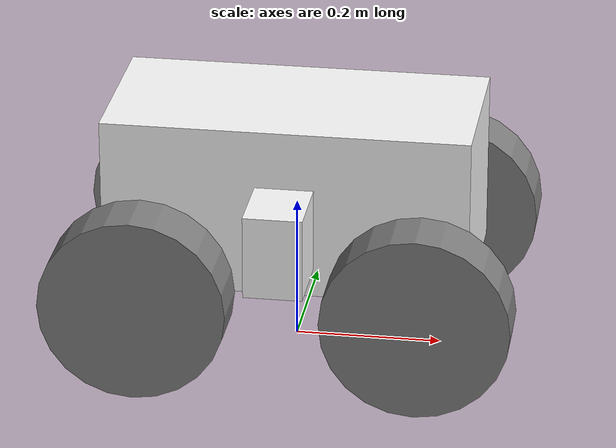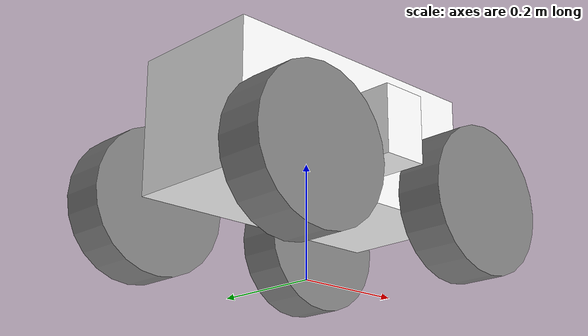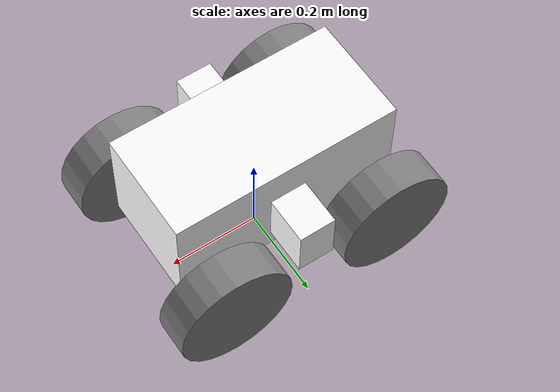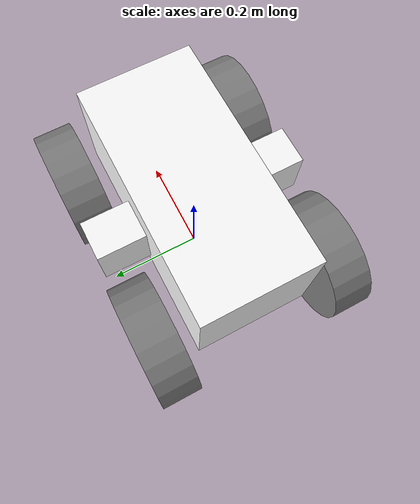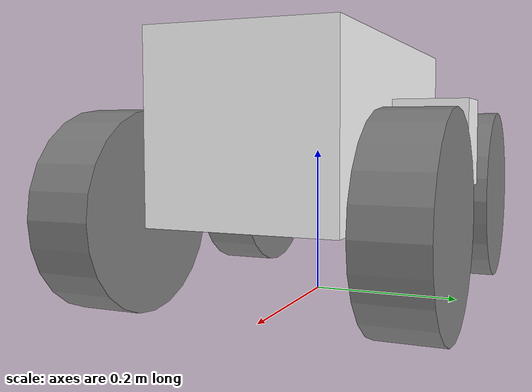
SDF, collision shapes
<?xml version="1.0"?>
<sdf version="1.6">
  <model name="robotika_freyja_sensor_config_2">
    <pose>0 0 0.1275 0 0 0</pose>
    <enable_wind>1</enable_wind>
    <link name="base_link">
      <inertial>
        <pose>0 0 0.0725 0 0 0</pose>
        <mass>9.6</mass>
        <inertia>
          <ixx>0.0512</ixx>
          <iyy>0.07712</iyy>
          <izz>0.11808</izz>
        </inertia>
      </inertial>

      <!-- This bounding box covers also wheel mounts at the bottom and
           lidars on the top. -->
      <collision name="chassis_collision">
        <pose>0 0 0.105 0 0 0</pose>
        <geometry>
          <box>
            <size>0.50 0.24 0.235</size>
          </box>
        </geometry>
      </collision>

      <visual name="visual">
        <pose>0 0 .1 0 0 1.5707</pose>
        <geometry>
          <mesh>
            <uri>model://T90_1/meshes/T90_1.dae</uri>
          </mesh>
        </geometry>
        <material>
          <script>
            <uri>model://T90_1/materials/scripts</uri>
            <uri>model://T90_1/materials/textures</uri>
            <name>ArucoVisualMarker0/Marker</name>
          </script>
          <ambient>1 1 1 1</ambient>
          <diffuse>1 1 1 1</diffuse>
          <specular>0 0 0 1</specular>
          <emissive>1 1 1 0</emissive>
          <shader type='vertex'>
            <normal_map>__default__</normal_map>
          </shader>
        </material>
      </visual>
      <collision name="left_mount_collision">
        <pose>0.0 0.17 0.085 0 0 0</pose>
        <geometry>
          <box>
            <size>0.08 0.1 0.115</size>
          </box>
        </geometry>
      </collision>
      <collision name="right_mount_collision">
        <pose>0.0 -0.17 0.085 0 0 0</pose>
        <geometry>
          <box>
            <size>0.08 0.1 0.115</size>
          </box>
        </geometry>
      </collision>
    </link>

    <link name="front_left_wheel">
      <pose>0.19 0.19 0 0 0 0</pose>
      <inertial>
        <mass>5.0</mass>
        <inertia>
          <ixx>0.0153</ixx>
          <iyy>0.025</iyy>
          <izz>0.0153</izz>
        </inertia>
      </inertial>
      <collision name="front_left_wheel_collision">
        <pose>0 0 0 -1.5707963267948966 0 0</pose>
        <geometry>
          <cylinder>
            <length>0.082</length>
            <radius>0.1275</radius>
          </cylinder>
        </geometry>
        <surface>
          <friction>
            <ode>
              <mu>0.5</mu>
              <mu2>1</mu2>
              <slip1>0.0016</slip1>
              <slip2>0</slip2>
              <fdir1>0 0 1</fdir1>
            </ode>
          </friction>
        </surface>
      </collision>
      <visual name="front_left_wheel_tire_visual">
        <pose>0 0 0 1.5708 0 0</pose>
        <geometry>
          <mesh>
            <uri>meshes/wheel_left.dae</uri>
            <scale>1.3010204 1.3010204 2.05</scale>
          </mesh>
        </geometry>
      </visual>
      <visual name="front_left_wheel_hub_visual">
        <pose>0 -0.055 0 1.5707963267948966 0 0</pose>
        <geometry>
          <cylinder>
            <length>0.025</length>
            <radius>0.04</radius>
          </cylinder>
        </geometry>
        <material>
          <ambient>0.502 0.502 0.502 1.0</ambient>
          <diffuse>0.502 0.502 0.502 1.0</diffuse>
        </material>
      </visual>
    </link>

    <link name="front_right_wheel">
      <pose>0.19 -0.19 0 0 0 0</pose>
      <inertial>
        <mass>5.0</mass>
        <inertia>
          <ixx>0.0153</ixx>
          <iyy>0.025</iyy>
          <izz>0.0153</izz>
        </inertia>
      </inertial>
      <collision name="front_right_wheel_collision">
        <pose>0 0 0 1.5707963267948966 0 0</pose>
        <geometry>
          <cylinder>
            <length>0.082</length>
            <radius>0.1275</radius>
          </cylinder>
        </geometry>
        <surface>
          <friction>
            <ode>
              <mu>0.5</mu>
              <mu2>1</mu2>
              <slip1>0.0016</slip1>
              <slip2>0</slip2>
              <fdir1>0 0 1</fdir1>
            </ode>
          </friction>
        </surface>
      </collision>
      <visual name="front_right_wheel_tire_visual">
        <pose>0 0 0 1.5708 0 0</pose>
        <geometry>
          <mesh>
            <uri>meshes/wheel_right.dae</uri>
            <scale>1.3010204 1.3010204 2.05</scale>
          </mesh>
        </geometry>
      </visual>
      <visual name="front_right_wheel_hub_visual">
        <pose>0 0.055 0 1.5707963267948966 0 0</pose>
        <geometry>
          <cylinder>
            <length>0.025</length>
            <radius>0.04</radius>
          </cylinder>
        </geometry>
        <material>
          <ambient>0.502 0.502 0.502 1.0</ambient>
          <diffuse>0.502 0.502 0.502 1.0</diffuse>
        </material>
      </visual>
    </link>

    <link name="rear_left_wheel">
      <pose>-0.19 0.19 0 0 0 0</pose>
      <inertial>
        <mass>5.0</mass>
        <inertia>
          <ixx>0.0153</ixx>
          <iyy>0.025</iyy>
          <izz>0.0153</izz>
        </inertia>
      </inertial>
      <collision name="rear_left_wheel_collision">
        <pose>0 0 0 -1.5707963267948966 0 0</pose>
        <geometry>
          <cylinder>
            <length>0.082</length>
            <radius>0.1275</radius>
          </cylinder>
        </geometry>
        <surface>
          <friction>
            <ode>
              <mu>0.5</mu>
              <mu2>1</mu2>
              <slip1>0.0016</slip1>
              <slip2>0</slip2>
              <fdir1>0 0 1</fdir1>
            </ode>
          </friction>
        </surface>
      </collision>
      <visual name="rear_left_wheel_tire_visual">
        <pose>0 0 0 1.5708 0 0</pose>
        <geometry>
          <mesh>
            <uri>meshes/wheel_left.dae</uri>
            <scale>1.3010204 1.3010204 2.05</scale>
          </mesh>
        </geometry>
      </visual>
      <visual name="rear_left_wheel_hub_visual">
        <pose>0 -0.055 0 1.5707963267948966 0 0</pose>
        <geometry>
          <cylinder>
            <length>0.025</length>
            <radius>0.04</radius>
          </cylinder>
        </geometry>
        <material>
          <ambient>0.502 0.502 0.502 1.0</ambient>
          <diffuse>0.502 0.502 0.502 1.0</diffuse>
        </material>
      </visual>
    </link>

    <link name="rear_right_wheel">
      <pose>-0.19 -0.19 0 0 0 0</pose>
      <inertial>
        <mass>5.0</mass>
        <inertia>
          <ixx>0.0153</ixx>
          <iyy>0.025</iyy>
          <izz>0.0153</izz>
        </inertia>
      </inertial>
      <collision name="rear_right_wheel_collision">
        <pose>0 0 0 1.5707963267948966 0 0</pose>
        <geometry>
          <cylinder>
            <length>0.082</length>
            <radius>0.1275</radius>
          </cylinder>
        </geometry>
        <surface>
          <friction>
            <ode>
              <mu>0.5</mu>
              <mu2>1</mu2>
              <slip1>0.0016</slip1>
              <slip2>0</slip2>
              <fdir1>0 0 1</fdir1>
            </ode>
          </friction>
        </surface>
      </collision>
      <visual name="rear_right_wheel_tire_visual">
        <pose>0 0 0 1.5708 0 0</pose>
        <geometry>
          <mesh>
            <uri>meshes/wheel_right.dae</uri>
            <scale>1.3010204 1.3010204 2.05</scale>
          </mesh>
        </geometry>
      </visual>
      <visual name="rear_right_wheel_hub_visual">
        <pose>0 0.055 0 1.5707963267948966 0 0</pose>
        <geometry>
          <cylinder>
            <length>0.025</length>
            <radius>0.04</radius>
          </cylinder>
        </geometry>
        <material>
          <ambient>0.502 0.502 0.502 1.0</ambient>
          <diffuse>0.502 0.502 0.502 1.0</diffuse>
        </material>
      </visual>
    </link>

    <joint name="front_left_wheel_joint" type="revolute">
      <child>front_left_wheel</child>
      <parent>base_link</parent>
      <axis>
        <xyz>0 1 0</xyz>
        <limit>
          <lower>-1.79769e+308</lower>
          <upper>+1.79769e+308</upper>
          <!-- 2.5 m/s => angular velocity of the wheel in rad/s -->
          <velocity>19.61</velocity>
          <!-- Torque in NM. -->
          <effort>10</effort>
        </limit>
        <use_parent_model_frame>1</use_parent_model_frame>
      </axis>
    </joint>

    <joint name="rear_left_wheel_joint" type="revolute">
      <parent>base_link</parent>
      <child>rear_left_wheel</child>
      <axis>
        <xyz>0 1 0</xyz>
        <limit>
          <lower>-1.79769e+308</lower>
          <upper>+1.79769e+308</upper>
          <!-- 2.5 m/s => angular velocity of the wheel in rad/s -->
          <velocity>19.61</velocity>
          <!-- Torque in NM. -->
          <effort>10</effort>
        </limit>
      </axis>
    </joint>

    <joint name="rear_right_wheel_joint" type="revolute">
      <parent>base_link</parent>
      <child>rear_right_wheel</child>
      <axis>
        <xyz>0 1 0</xyz>
        <limit>
          <lower>-1.79769e+308</lower>
          <upper>+1.79769e+308</upper>
          <!-- 2.5 m/s => angular velocity of the wheel in rad/s -->
          <velocity>19.61</velocity>
          <!-- Torque in NM. -->
          <effort>10</effort>
        </limit>
      </axis>
    </joint>

    <joint name="front_right_wheel_joint" type="revolute">
      <parent>base_link</parent>
      <child>front_right_wheel</child>
      <axis>
        <xyz>0 1 0</xyz>
        <limit>
          <lower>-1.79769e+308</lower>
          <upper>+1.79769e+308</upper>
          <!-- 2.5 m/s => angular velocity of the wheel in rad/s -->
          <velocity>19.61</velocity>
          <!-- Torque in NM. -->
          <effort>10</effort>
        </limit>
      </axis>
    </joint>

    <plugin name="differential_drive_controller" filename="libgazebo_ros_diff_drive.so">
        <!-- Plugin update rate in Hz -->
        <updateRate>20</updateRate>
        <!-- Name of left joint, defaults to `left_joint` -->
        <leftJoint>front_left_wheel_joint</leftJoint>
        <!-- Name of right joint, defaults to `right_joint` -->
        <rightJoint>front_right_wheel_joint</rightJoint>
        <!-- The distance from the center of one wheel to the other, in meters, defaults to 0.34 m -->
        <wheelSeparation>0.26</wheelSeparation>
        <!-- Diameter of the wheels, in meters, defaults to 0.15 m -->
        <wheelDiameter>0.255</wheelDiameter>
        <!-- Wheel acceleration, in rad/s^2, defaults to 0.0 rad/s^2 -->
        <wheelAcceleration>1.0</wheelAcceleration>
        <!-- Maximum torque which the wheels can produce, in Nm, defaults to 5 Nm -->
        <wheelTorque>20</wheelTorque>
        <!-- Topic to receive geometry_msgs/Twist message commands, defaults to `cmd_vel` -->
        <commandTopic>cmd_vel</commandTopic>
        <!-- Topic to publish nav_msgs/Odometry messages, defaults to `odom` -->
        <odometryTopic>odom</odometryTopic>
        <!-- Odometry frame, defaults to `odom` -->
        <odometryFrame>odom</odometryFrame>
        <!-- Robot frame to calculate odometry from, defaults to `base_footprint` -->
        <robotBaseFrame>base_footprint</robotBaseFrame>
        <!-- Odometry source, 0 for ENCODER, 1 for WORLD, defaults to WORLD -->
        <odometrySource>1</odometrySource>
        <!-- Set to true to publish transforms for the wheel links, defaults to false -->
        <publishWheelTF>true</publishWheelTF>
        <!-- Set to true to publish transforms for the odometry, defaults to true -->
        <publishOdom>true</publishOdom>
        <!-- Set to true to publish sensor_msgs/JointState on /joint_states for the wheel joints, defaults to false -->
        <publishWheelJointState>true</publishWheelJointState>
        <!-- Set to true to swap right and left wheels, defaults to true -->
        <legacyMode>false</legacyMode>
    </plugin>

  </model>
</sdf>
